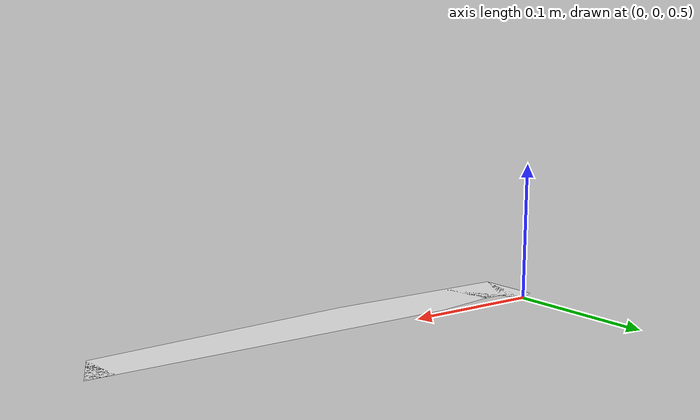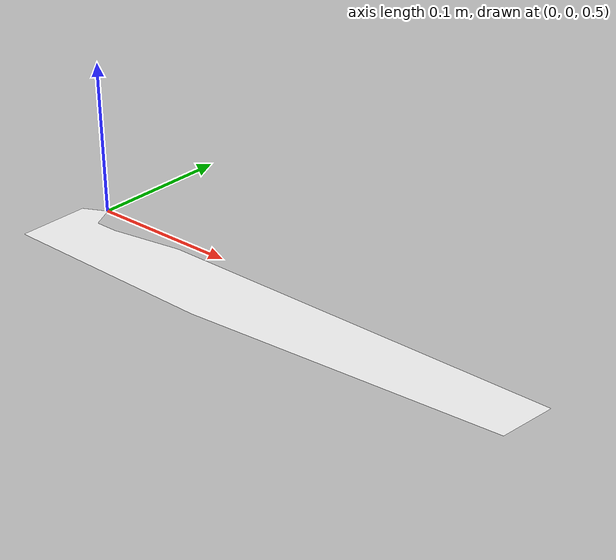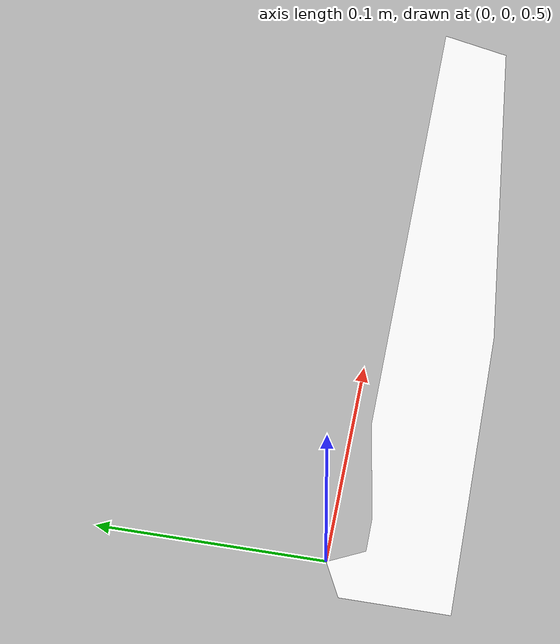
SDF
<?xml version='1.0'?>
<sdf version="1.6">
<model name="minus">
  <static>true</static>
    <link name="link">
      <inertial>
        <mass>1</mass>
        <inertia>
          <ixx>0.1</ixx>
          <ixy>0</ixy>
          <ixz>0</ixz>
          <iyy>0.1</iyy>
          <iyz>0</iyz>
          <izz>0.1</izz>
        </inertia>
      </inertial>
      <pose>0 0 0.5 0 0 0</pose>
      <collision name="collision">
        <geometry>
          <mesh>
            <uri>model://minus/meshes/model.dae</uri>
          </mesh>
        </geometry>
      </collision>
      <visual name="visual">
        <geometry>
          <mesh>
            <uri>model://minus/meshes/model.dae</uri>
          </mesh>
        </geometry>
      </visual>
    </link>
  </model>
</sdf>
